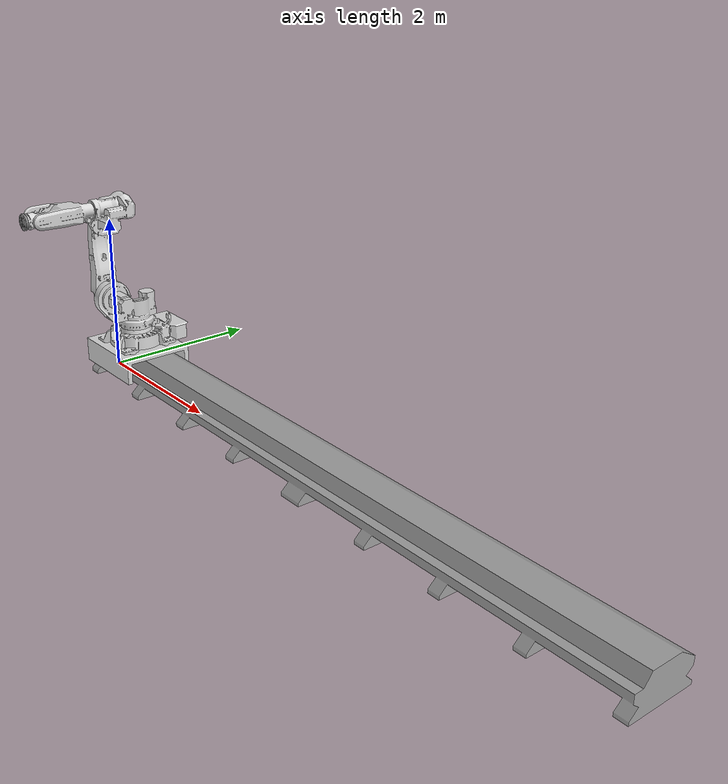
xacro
<?xml version="1.0"?>
<robot xmlns:xacro="http://www.ros.org/wiki/xacro" name="dualarm_track">
    <xacro:arg name="initial_positions_file" default="initial_positions.yaml" />

    <!-- Import dualarm_track urdf file -->
    <xacro:include filename="$(find dualarm_track_support)/urdf/dualarm_track.urdf" />

    <!-- Import control_xacro -->
    <xacro:include filename="dualarm_track.ros2_control.xacro" />

    <xacro:dualarm_track_ros2_control name="FakeSystem" initial_positions_file="$(arg initial_positions_file)"/>

</robot>

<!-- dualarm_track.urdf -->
<!-- |    This document was autogenerated by xacro from dualarm_track.urdf.xacro       | -->
<!-- |    EDITING THIS FILE BY HAND IS NOT RECOMMENDED                                 | -->
<robot name="dualarm_track">
  <material name="silver_default">
    <color rgba="0.700 0.700 0.700 1.000"/>
  </material>
  <material name="opaque215215215">
    <color rgba="0.8431372549019608 0.8431372549019608 0.8431372549019608 1.0"/>
  </material>
  <material name="opaque128128128">
    <color rgba="0.5019607843137255 0.5019607843137255 0.5019607843137255 1.0"/>
  </material>
  <material name="steel_satin">
    <color rgba="0.6274509803921569 0.6274509803921569 0.6274509803921569 1.0"/>
  </material>
  <link name="base_link">
    <inertial>
      <origin rpy="0 0 0" xyz="4.350000000000003 0.007802389093675564 0.22039220138139537"/>
      <mass value="17861.70571223475"/>
      <inertia ixx="874.507554" ixy="-0.0" ixz="0.0" iyy="113200.027675" iyz="-17.225414" izz="113619.462683"/>
    </inertial>
    <visual>
      <origin rpy="0 0 0" xyz="0 0 0"/>
      <geometry>
        <mesh filename="package://dualarm_track_support/meshes/base_link.stl" scale="0.001 0.001 0.001"/>
      </geometry>
      <material name="steel_satin"/>
    </visual>
    <collision>
      <origin rpy="0 0 0" xyz="0 0 0"/>
      <geometry>
        <mesh filename="package://dualarm_track_support/meshes/base_link.stl" scale="0.001 0.001 0.001"/>
      </geometry>
    </collision>
  </link>
  <link name="rob1_link2_1">
    <inertial>
      <origin rpy="0 0 0" xyz="-0.08783951896435793 -0.0005479770874912138 0.4192831405132833"/>
      <mass value="322.6869494051032"/>
      <inertia ixx="32.058389" ixy="-0.002905" ixz="2.969817" iyy="31.332255" iyz="0.067522" izz="2.725277"/>
    </inertial>
    <visual>
      <origin rpy="0 0 0" xyz="-0.3945 0.32 -1.158674"/>
      <geometry>
        <mesh filename="package://dualarm_track_support/meshes/rob1_link2_1.stl" scale="0.001 0.001 0.001"/>
      </geometry>
      <material name="opaque215215215"/>
    </visual>
    <collision>
      <origin rpy="0 0 0" xyz="-0.3945 0.32 -1.158674"/>
      <geometry>
        <mesh filename="package://dualarm_track_support/meshes/rob1_link2_1.stl" scale="0.001 0.001 0.001"/>
      </geometry>
    </collision>
  </link>
  <link name="rob1_link3_1">
    <inertial>
      <origin rpy="0 0 0" xyz="0.23437540848825827 0.04789961325356917 0.11779149410246958"/>
      <mass value="392.46903681876654"/>
      <inertia ixx="10.861718" ixy="-1.465206" ixz="-2.045934" iyy="11.726762" iyz="-1.592788" izz="11.751196"/>
    </inertial>
    <visual>
      <origin rpy="0 0 0" xyz="-0.299 0.32 -2.133674"/>
      <geometry>
        <mesh filename="package://dualarm_track_support/meshes/rob1_link3_1.stl" scale="0.001 0.001 0.001"/>
      </geometry>
      <material name="opaque215215215"/>
    </visual>
    <collision>
      <origin rpy="0 0 0" xyz="-0.299 0.32 -2.133674"/>
      <geometry>
        <mesh filename="package://dualarm_track_support/meshes/rob1_link3_1.stl" scale="0.001 0.001 0.001"/>
      </geometry>
    </collision>
  </link>
  <link name="rob1_link4_1">
    <inertial>
      <origin rpy="0 0 0" xyz="-0.014153009406352446 -0.3920696832791525 -6.094864964856228e-05"/>
      <mass value="283.78132224866226"/>
      <inertia ixx="11.46404" ixy="-0.662055" ixz="0.000528" iyy="3.961577" iyz="0.007475" izz="13.570946"/>
    </inertial>
    <visual>
      <origin rpy="0 0 0" xyz="-0.525 0.502 -2.333674"/>
      <geometry>
        <mesh filename="package://dualarm_track_support/meshes/rob1_link4_1.stl" scale="0.001 0.001 0.001"/>
      </geometry>
      <material name="opaque215215215"/>
    </visual>
    <collision>
      <origin rpy="0 0 0" xyz="-0.525 0.502 -2.333674"/>
      <geometry>
        <mesh filename="package://dualarm_track_support/meshes/rob1_link4_1.stl" scale="0.001 0.001 0.001"/>
      </geometry>
    </collision>
  </link>
  <link name="rob1_link5_1">
    <inertial>
      <origin rpy="0 0 0" xyz="-0.10016333880679884 -0.038074184295092905 -0.001302293522098541"/>
      <mass value="49.95763546704962"/>
      <inertia ixx="0.370215" ixy="-0.014389" ixz="-0.00385" iyy="0.204286" iyz="-0.00517" izz="0.398271"/>
    </inertial>
    <visual>
      <origin rpy="0 0 0" xyz="-0.627 1.207 -2.333674"/>
      <geometry>
        <mesh filename="package://dualarm_track_support/meshes/rob1_link5_1.stl" scale="0.001 0.001 0.001"/>
      </geometry>
      <material name="opaque215215215"/>
    </visual>
    <collision>
      <origin rpy="0 0 0" xyz="-0.627 1.207 -2.333674"/>
      <geometry>
        <mesh filename="package://dualarm_track_support/meshes/rob1_link5_1.stl" scale="0.001 0.001 0.001"/>
      </geometry>
    </collision>
  </link>
  <link name="rob1_link6_1">
    <inertial>
      <origin rpy="0 0 0" xyz="0.0004916127782503832 -0.013682763984406598 -8.503560273620536e-05"/>
      <mass value="7.203563041480472"/>
      <inertia ixx="0.019368" ixy="-8e-06" ixz="-7e-05" iyy="0.037108" iyz="-1e-06" izz="0.019147"/>
    </inertial>
    <visual>
      <origin rpy="0 0 0" xyz="-0.525 1.375 -2.333674"/>
      <geometry>
        <mesh filename="package://dualarm_track_support/meshes/rob1_link6_1.stl" scale="0.001 0.001 0.001"/>
      </geometry>
      <material name="opaque128128128"/>
    </visual>
    <collision>
      <origin rpy="0 0 0" xyz="-0.525 1.375 -2.333674"/>
      <geometry>
        <mesh filename="package://dualarm_track_support/meshes/rob1_link6_1.stl" scale="0.001 0.001 0.001"/>
      </geometry>
    </collision>
  </link>
  <link name="rob1_link1_1">
    <inertial>
      <origin rpy="0 0 0" xyz="0.03253750609511141 -0.1489015240206352 0.2997386971909384"/>
      <mass value="642.4142354132725"/>
      <inertia ixx="44.967832" ixy="2.179688" ixz="-2.614551" iyy="27.786175" iyz="12.883359" izz="35.549494"/>
    </inertial>
    <visual>
      <origin rpy="0 0 0" xyz="-0.525 0.0 -0.708674"/>
      <geometry>
        <mesh filename="package://dualarm_track_support/meshes/rob1_link1_1.stl" scale="0.001 0.001 0.001"/>
      </geometry>
      <material name="opaque215215215"/>
    </visual>
    <collision>
      <origin rpy="0 0 0" xyz="-0.525 0.0 -0.708674"/>
      <geometry>
        <mesh filename="package://dualarm_track_support/meshes/rob1_link1_1.stl" scale="0.001 0.001 0.001"/>
      </geometry>
    </collision>
  </link>
  <link name="rob1_base_1">
    <inertial>
      <origin rpy="0 0 0" xyz="0.5251461441795046 0.07516456043445498 0.06698451289427176"/>
      <mass value="1368.8196309737446"/>
      <inertia ixx="145.638764" ixy="0.019464" ixz="-0.095943" iyy="98.236958" iyz="-9.296485" izz="202.449913"/>
    </inertial>
    <visual>
      <origin rpy="0 0 0" xyz="0.0 0.0 -0.433674"/>
      <geometry>
        <mesh filename="package://dualarm_track_support/meshes/rob1_base_1.stl" scale="0.001 0.001 0.001"/>
      </geometry>
      <material name="opaque215215215"/>
    </visual>
    <collision>
      <origin rpy="0 0 0" xyz="0.0 0.0 -0.433674"/>
      <geometry>
        <mesh filename="package://dualarm_track_support/meshes/rob1_base_1.stl" scale="0.001 0.001 0.001"/>
      </geometry>
    </collision>
  </link>
  <joint name="rob1_joint2" type="continuous">
    <origin rpy="0 0 0" xyz="-0.1305 -0.32 0.45"/>
    <parent link="rob1_link1_1"/>
    <child link="rob1_link2_1"/>
    <axis xyz="-1.0 0.0 0.0"/>
  </joint>
  <joint name="rob1_joint3" type="continuous">
    <origin rpy="0 0 0" xyz="-0.0955 0.0 0.975"/>
    <parent link="rob1_link2_1"/>
    <child link="rob1_link3_1"/>
    <axis xyz="-1.0 0.0 0.0"/>
  </joint>
  <joint name="rob1_joint4" type="continuous">
    <origin rpy="0 0 0" xyz="0.226 -0.182 0.2"/>
    <parent link="rob1_link3_1"/>
    <child link="rob1_link4_1"/>
    <axis xyz="-0.0 -1.0 -0.0"/>
  </joint>
  <joint name="rob1_joint5" type="continuous">
    <origin rpy="0 0 0" xyz="0.102 -0.705 0.0"/>
    <parent link="rob1_link4_1"/>
    <child link="rob1_link5_1"/>
    <axis xyz="-1.0 0.0 0.0"/>
  </joint>
  <joint name="rob1_joint6" type="continuous">
    <origin rpy="0 0 0" xyz="-0.102 -0.168 0.0"/>
    <parent link="rob1_link5_1"/>
    <child link="rob1_link6_1"/>
    <axis xyz="0.0 1.0 0.0"/>
  </joint>
  <joint name="rob1_joint1" type="continuous">
    <origin rpy="0 0 0" xyz="0.525 0.0 0.275"/>
    <parent link="rob1_base_1"/>
    <child link="rob1_link1_1"/>
    <axis xyz="0.0 -0.0 1.0"/>
  </joint>

  <joint name="rob1_track" type="prismatic">
    <origin rpy="0 0 0" xyz="0.0 0.0 0.433674"/>
    <parent link="base_link"/>
    <child link="rob1_base_1"/>
    <axis xyz="1.0 0.0 0.0"/>
    <limit effort="100" lower="0.0" upper="3.5" velocity="100"/>
  </joint>

  <ros2_control name="ABBMultiInterfaceHardware" type="system">
    <hardware>
      <plugin>mock_components/GenericSystem</plugin>
      <param name="fake_sensor_commands">false</param>
      <param name="state_following_offset">0.0</param>
    </hardware>
    <joint name="rob1_joint1">
      <command_interface name="position">
        <param name="min">-6.283185307179586</param>
        <param name="max">6.283185307179586</param>
      </command_interface>
      <command_interface name="velocity"/>
      <state_interface name="position">
        <param name="initial_value">0.0</param>
      </state_interface>
      <state_interface name="velocity"/>
    </joint>
    <joint name="rob1_joint2">
      <command_interface name="position">
        <param name="min">-2.41</param>
        <param name="max">2.41</param>
      </command_interface>
      <command_interface name="velocity"/>
      <state_interface name="position">
        <param name="initial_value">0.0</param>
      </state_interface>
      <state_interface name="velocity"/>
    </joint>
    <joint name="rob1_joint3">
      <command_interface name="position">
        <param name="min">-6.283185307179586</param>
        <param name="max">6.283185307179586</param>
      </command_interface>
      <command_interface name="velocity"/>
      <state_interface name="position">
        <param name="initial_value">0.0</param>
      </state_interface>
      <state_interface name="velocity"/>
    </joint>
    <joint name="rob1_joint4">
      <command_interface name="position">
        <param name="min">-2.66</param>
        <param name="max">2.66</param>
      </command_interface>
      <command_interface name="velocity"/>
      <state_interface name="position">
        <param name="initial_value">0.0</param>
      </state_interface>
      <state_interface name="velocity"/>
    </joint>
    <joint name="rob1_joint5">
      <command_interface name="position">
        <param name="min">-6.283185307179586</param>
        <param name="max">6.283185307179586</param>
      </command_interface>
      <command_interface name="velocity"/>
      <state_interface name="position">
        <param name="initial_value">0.0</param>
      </state_interface>
      <state_interface name="velocity"/>
    </joint>
    <joint name="rob1_joint6">
      <command_interface name="position">
        <param name="min">-2.23</param>
        <param name="max">2.23</param>
      </command_interface>
      <command_interface name="velocity"/>
      <state_interface name="position">
        <param name="initial_value">0.0</param>
      </state_interface>
      <state_interface name="velocity"/>
    </joint>
    <joint name="rob1_track">
      <command_interface name="position">
        <param name="min">0</param>
        <param name="max">3.5</param>
      </command_interface>
      <command_interface name="velocity"/>
      <state_interface name="position">
        <param name="initial_value">0.0</param>
      </state_interface>
      <state_interface name="velocity"/>
    </joint>
  </ros2_control>
  <!-- rob2 ros2_control -->
</robot>
